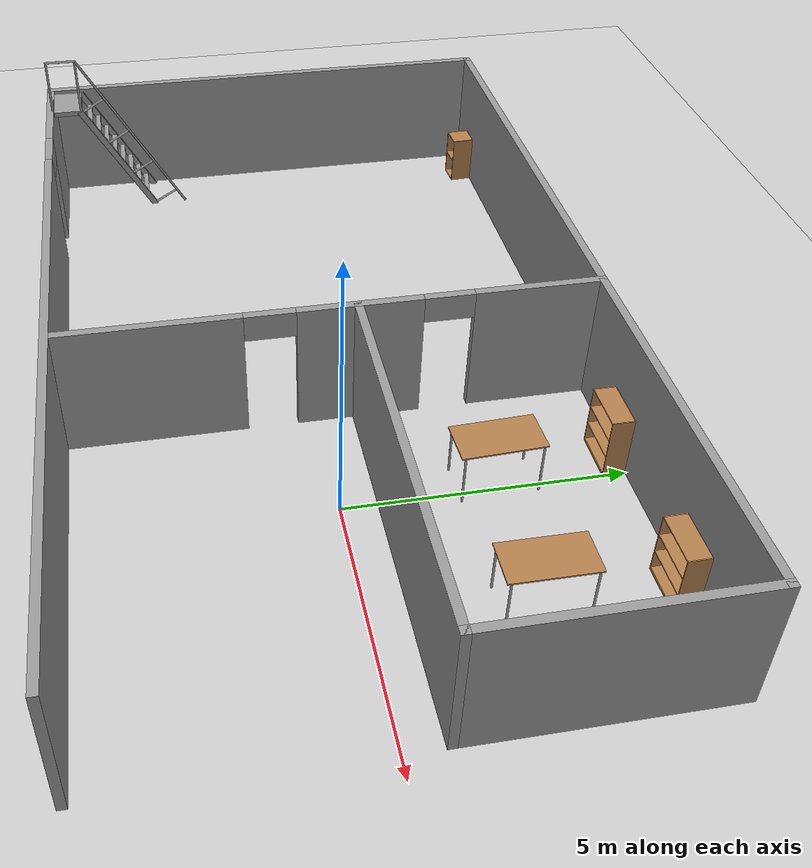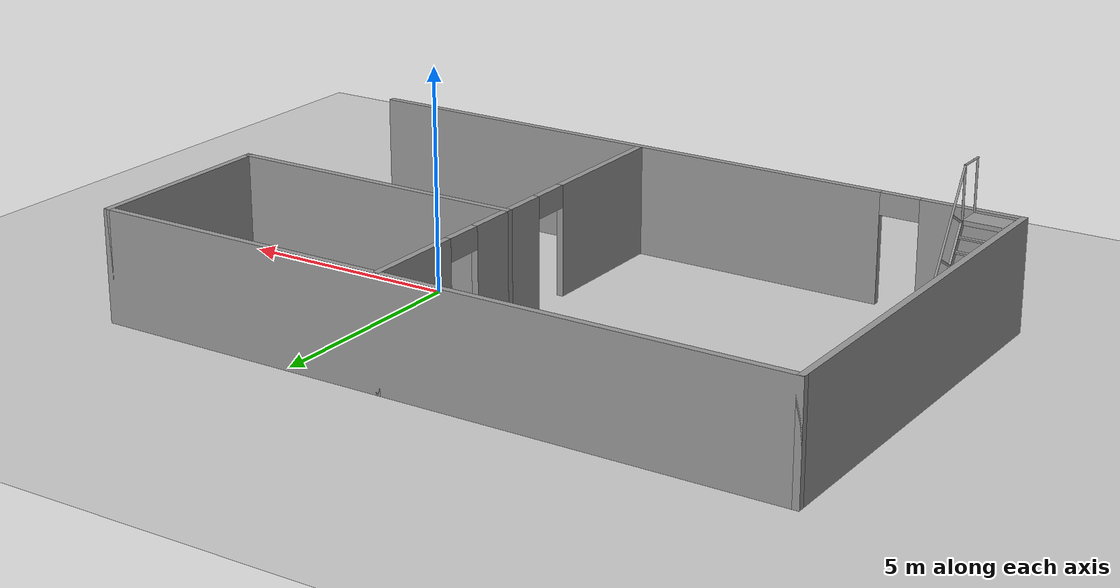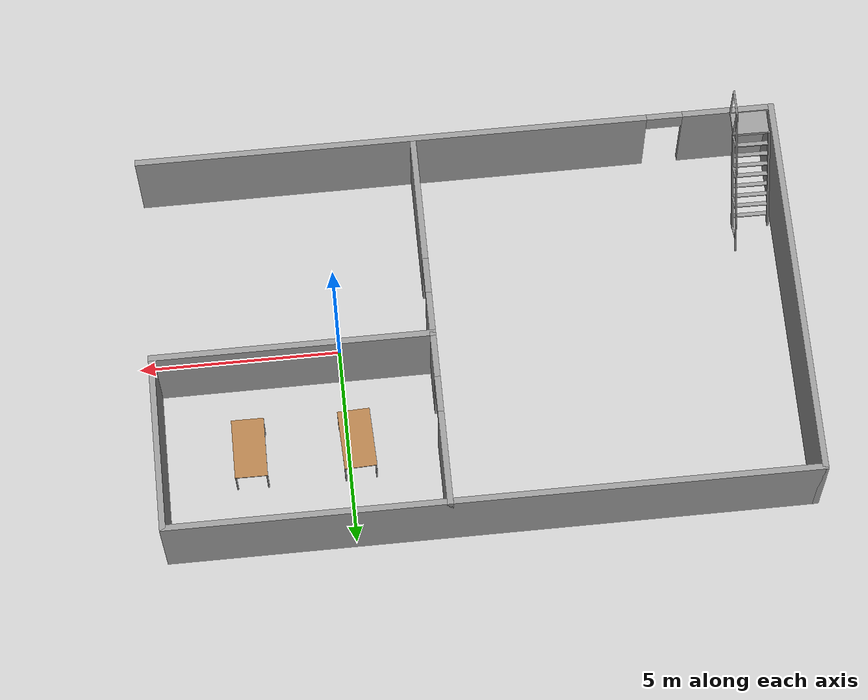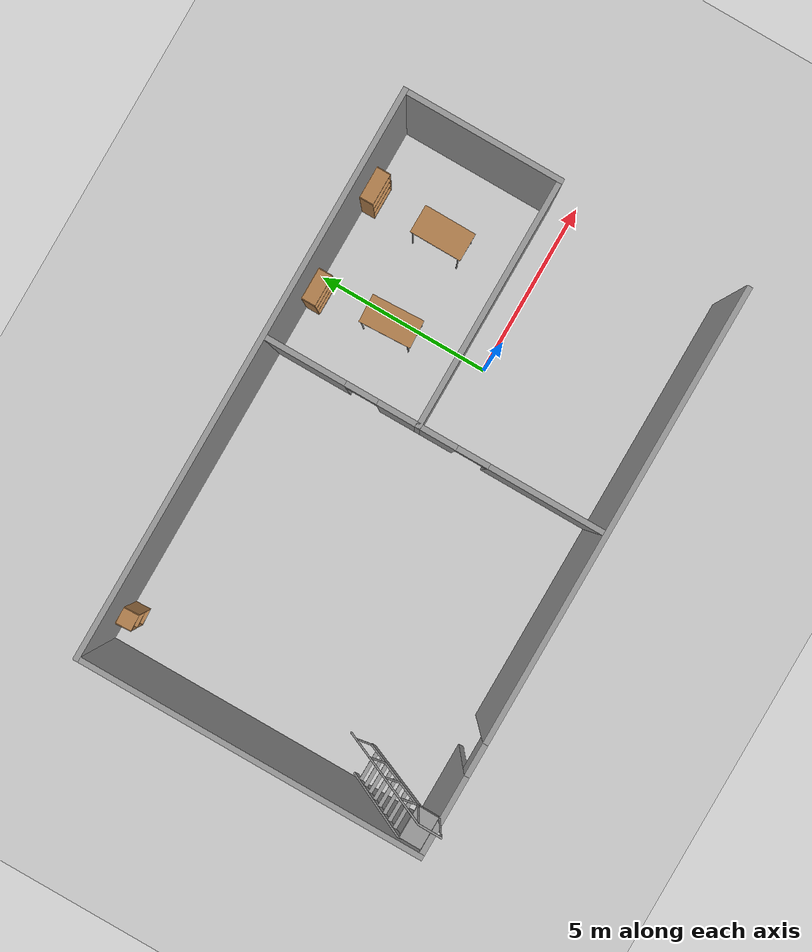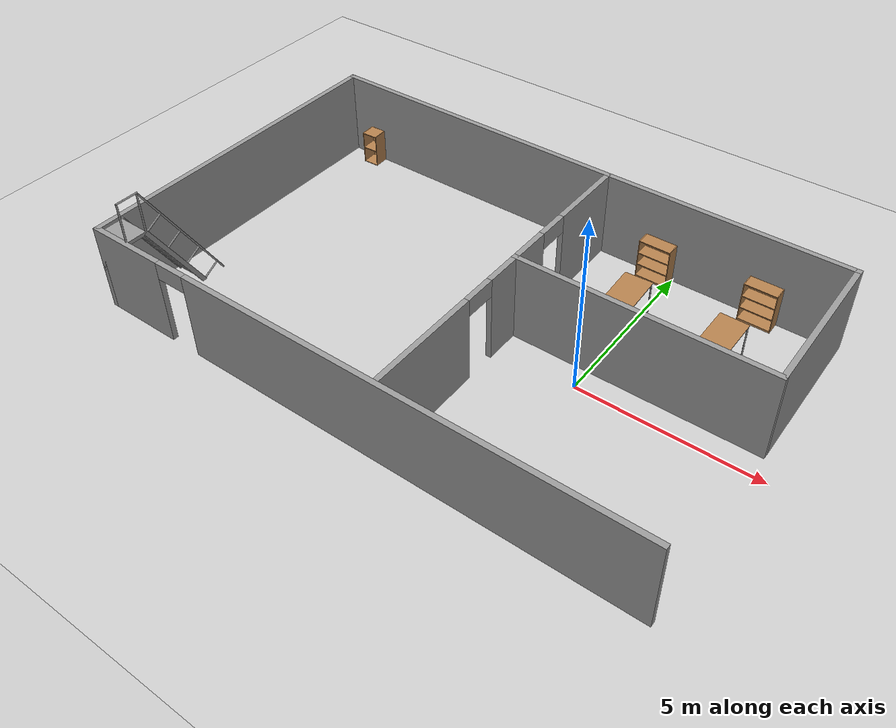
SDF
<sdf version="1.6">
 <world name="default">
  <light name="sun" type="directional">
   <pose>0 0 10 0 -0 0</pose>
   <diffuse>0.8 0.8 0.8 1</diffuse>
   <specular>0.2 0.2 0.2 1</specular>
   <attenuation>
    <range>1000</range>
    <constant>0.9</constant>
    <linear>0.01</linear>
    <quadratic>0.001</quadratic>
   </attenuation>
   <direction>-0.5 0.1 -0.9</direction>
  </light>
  <model name="ground_plane">
   <static>1</static>
   <link name="link">
    <collision name="collision">
     <geometry><plane><normal>0 0 1</normal><size>100 100</size></plane></geometry>
     <surface>
      <contact><collide_bitmask>65535</collide_bitmask></contact>
      <friction><ode><mu>100</mu><mu2>50</mu2></ode></friction>
     </surface>
    </collision>
    <visual name="visual">
     <cast_shadows>0</cast_shadows>
     <geometry><plane><normal>0 0 1</normal><size>100 100</size></plane></geometry>
     <material>
      <script><uri>file://media/materials/scripts/gazebo.material</uri><name>Gazebo/Grey</name></script>
     </material>
    </visual>
   </link>
  </model>
  <gravity>0 0 -9.8</gravity>
  <magnetic_field>6e-06 2.3e-05 -4.2e-05</magnetic_field>
  <atmosphere type="adiabatic"/>
  <physics name="default_physics" default="0" type="ode">
   <max_step_size>0.001</max_step_size>
   <real_time_factor>1</real_time_factor>
   <real_time_update_rate>1000</real_time_update_rate>
  </physics>
  <scene><ambient>0.4 0.4 0.4 1</ambient><background>0.7 0.7 0.7 1</background><shadows>1</shadows></scene>
  <spherical_coordinates>
   <surface_model>EARTH_WGS84</surface_model>
   <latitude_deg>0</latitude_deg>
   <longitude_deg>0</longitude_deg>
   <elevation>0</elevation>
   <heading_deg>0</heading_deg>
  </spherical_coordinates>
  <model name="House2">
   <pose>-3.36785 0.26134 0 0 -0 0</pose>
   <link name="Wall_15">
    <collision name="Wall_15_Collision">
     <geometry><box><size>16 0.15 2.5</size></box></geometry>
     <pose>0 0 1.25 0 -0 0</pose>
    </collision>
    <visual name="Wall_15_Visual">
     <pose>0 0 1.25 0 -0 0</pose>
     <geometry><box><size>16 0.15 2.5</size></box></geometry>
     <material>
      <script><uri>file://media/materials/scripts/gazebo.material</uri><name>Gazebo/Grey</name></script>
      <ambient>1 1 1 1</ambient>
     </material>
     <meta><layer>0</layer></meta>
    </visual>
    <pose>0 4.8 0 0 -0 0</pose>
   </link>
   <link name="Wall_16">
    <collision name="Wall_16_Collision">
     <geometry><box><size>4.5 0.15 2.5</size></box></geometry>
     <pose>0 0 1.25 0 -0 0</pose>
    </collision>
    <visual name="Wall_16_Visual">
     <pose>0 0 1.25 0 -0 0</pose>
     <geometry><box><size>4.5 0.15 2.5</size></box></geometry>
     <material>
      <script><uri>file://media/materials/scripts/gazebo.material</uri><name>Gazebo/Grey</name></script>
      <ambient>1 1 1 1</ambient>
     </material>
     <meta><layer>0</layer></meta>
    </visual>
    <pose>7.925 2.625 0 0 0 -1.5708</pose>
   </link>
   <link name="Wall_19">
    <collision name="Wall_19_Collision">
     <geometry><box><size>7 0.15 2.5</size></box></geometry>
     <pose>0 0 1.25 0 -0 0</pose>
    </collision>
    <visual name="Wall_19_Visual">
     <pose>0 0 1.25 0 -0 0</pose>
     <geometry><box><size>7 0.15 2.5</size></box></geometry>
     <material>
      <script><uri>file://media/materials/scripts/gazebo.material</uri><name>Gazebo/Grey</name></script>
      <ambient>1 1 1 1</ambient>
     </material>
     <meta><layer>0</layer></meta>
    </visual>
    <pose>4.5 0.45 0 0 -0 3.14159</pose>
   </link>
   <link name="Wall_29">
    <collision name="Wall_29_Collision">
     <geometry><box><size>9.75 0.15 2.5</size></box></geometry>
     <pose>0 0 1.25 0 -0 0</pose>
    </collision>
    <visual name="Wall_29_Visual">
     <pose>0 0 1.25 0 -0 0</pose>
     <geometry><box><size>9.75 0.15 2.5</size></box></geometry>
     <material>
      <script><uri>file://media/materials/scripts/gazebo.material</uri><name>Gazebo/Grey</name></script>
      <ambient>1 1 1 1</ambient>
     </material>
     <meta><layer>0</layer></meta>
    </visual>
    <pose>-7.925 0 0 0 0 -1.5708</pose>
   </link>
   <link name="Wall_33">
    <pose>0 -4.8 0 0 -0 0</pose>
    <visual name="Wall_33_Visual_0">
     <pose>-6.84421 0 1.25 0 -0 0</pose>
     <geometry><box><size>2.31159 0.15 2.5</size></box></geometry>
     <material>
      <script><uri>file://media/materials/scripts/gazebo.material</uri><name>Gazebo/Grey</name></script>
      <ambient>1 1 1 1</ambient>
     </material>
     <meta><layer>0</layer></meta>
    </visual>
    <collision name="Wall_33_Collision_0">
     <geometry><box><size>2.31159 0.15 2.5</size></box></geometry>
     <pose>-6.84421 0 1.25 0 -0 0</pose>
    </collision>
    <visual name="Wall_33_Visual_1">
     <pose>1.60579 0 1.25 0 -0 0</pose>
     <geometry><box><size>12.7884 0.15 2.5</size></box></geometry>
     <material>
      <script><uri>file://media/materials/scripts/gazebo.material</uri><name>Gazebo/Grey</name></script>
      <ambient>1 1 1 1</ambient>
     </material>
     <meta><layer>0</layer></meta>
    </visual>
    <collision name="Wall_33_Collision_1">
     <geometry><box><size>12.7884 0.15 2.5</size></box></geometry>
     <pose>1.60579 0 1.25 0 -0 0</pose>
    </collision>
    <visual name="Wall_33_Visual_2">
     <pose>-5.23841 0 2.25 0 -0 0</pose>
     <geometry><box><size>0.9 0.15 0.5</size></box></geometry>
     <material>
      <script><uri>file://media/materials/scripts/gazebo.material</uri><name>Gazebo/Grey</name></script>
      <ambient>1 1 1 1</ambient>
     </material>
     <meta><layer>0</layer></meta>
    </visual>
    <collision name="Wall_33_Collision_2">
     <geometry><box><size>0.9 0.15 0.5</size></box></geometry>
     <pose>-5.23841 0 2.25 0 -0 0</pose>
    </collision>
   </link>
   <link name="Wall_35">
    <pose>1.075 -2.1 0 0 0 -1.5708</pose>
    <visual name="Wall_35_Visual_0">
     <pose>-2.05187 0 1.25 0 -0 0</pose>
     <geometry><box><size>1.14626 0.15 2.5</size></box></geometry>
     <material>
      <script><uri>file://media/materials/scripts/gazebo.material</uri><name>Gazebo/Grey</name></script>
      <ambient>1 1 1 1</ambient>
     </material>
     <meta><layer>0</layer></meta>
    </visual>
    <collision name="Wall_35_Collision_0">
     <geometry><box><size>1.14626 0.15 2.5</size></box></geometry>
     <pose>-2.05187 0 1.25 0 -0 0</pose>
    </collision>
    <visual name="Wall_35_Visual_1">
     <pose>1.02313 0 1.25 0 -0 0</pose>
     <geometry><box><size>3.20374 0.15 2.5</size></box></geometry>
     <material>
      <script><uri>file://media/materials/scripts/gazebo.material</uri><name>Gazebo/Grey</name></script>
      <ambient>1 1 1 1</ambient>
     </material>
     <meta><layer>0</layer></meta>
    </visual>
    <collision name="Wall_35_Collision_1">
     <geometry><box><size>3.20374 0.15 2.5</size></box></geometry>
     <pose>1.02313 0 1.25 0 -0 0</pose>
    </collision>
    <visual name="Wall_35_Visual_2">
     <pose>-1.02874 0 2.25 0 -0 0</pose>
     <geometry><box><size>0.9 0.15 0.5</size></box></geometry>
     <material>
      <script><uri>file://media/materials/scripts/gazebo.material</uri><name>Gazebo/Grey</name></script>
      <ambient>1 1 1 1</ambient>
     </material>
     <meta><layer>0</layer></meta>
    </visual>
    <collision name="Wall_35_Collision_2">
     <geometry><box><size>0.9 0.15 0.5</size></box></geometry>
     <pose>-1.02874 0 2.25 0 -0 0</pose>
    </collision>
   </link>
   <link name="Wall_39">
    <pose>1.075 2.625 0 0 -0 1.5708</pose>
    <visual name="Wall_39_Visual_0">
     <pose>-1.63803 0 1.25 0 -0 0</pose>
     <geometry><box><size>1.22394 0.15 2.5</size></box></geometry>
     <material>
      <script><uri>file://media/materials/scripts/gazebo.material</uri><name>Gazebo/Grey</name></script>
      <ambient>1 1 1 1</ambient>
     </material>
     <meta><layer>0</layer></meta>
    </visual>
    <collision name="Wall_39_Collision_0">
     <geometry><box><size>1.22394 0.15 2.5</size></box></geometry>
     <pose>-1.63803 0 1.25 0 -0 0</pose>
    </collision>
    <visual name="Wall_39_Visual_1">
     <pose>1.06197 0 1.25 0 -0 0</pose>
     <geometry><box><size>2.37606 0.15 2.5</size></box></geometry>
     <material>
      <script><uri>file://media/materials/scripts/gazebo.material</uri><name>Gazebo/Grey</name></script>
      <ambient>1 1 1 1</ambient>
     </material>
     <meta><layer>0</layer></meta>
    </visual>
    <collision name="Wall_39_Collision_1">
     <geometry><box><size>2.37606 0.15 2.5</size></box></geometry>
     <pose>1.06197 0 1.25 0 -0 0</pose>
    </collision>
    <visual name="Wall_39_Visual_2">
     <pose>-0.57606 0 2.25 0 -0 0</pose>
     <geometry><box><size>0.9 0.15 0.5</size></box></geometry>
     <material>
      <script><uri>file://media/materials/scripts/gazebo.material</uri><name>Gazebo/Grey</name></script>
      <ambient>1 1 1 1</ambient>
     </material>
     <meta><layer>0</layer></meta>
    </visual>
    <collision name="Wall_39_Collision_2">
     <geometry><box><size>0.9 0.15 0.5</size></box></geometry>
     <pose>-0.57606 0 2.25 0 -0 0</pose>
    </collision>
   </link>
   <static>1</static>
  </model>
  <model name="bookshelf">
   <static>1</static>
   <link name="link">
    <inertial><mass>1</mass></inertial>
    <collision name="back">
     <pose>0 0.005 0.6 0 -0 0</pose>
     <geometry><box><size>0.9 0.01 1.2</size></box></geometry>
    </collision>
    <visual name="visual1">
     <pose>0 0.005 0.6 0 -0 0</pose>
     <geometry><box><size>0.9 0.01 1.2</size></box></geometry>
     <material>
      <script><uri>file://media/materials/scripts/gazebo.material</uri><name>Gazebo/Wood</name></script>
     </material>
    </visual>
    <collision name="left_side">
     <pose>0.45 -0.195 0.6 0 -0 0</pose>
     <geometry><box><size>0.02 0.4 1.2</size></box></geometry>
    </collision>
    <visual name="visual2">
     <pose>0.45 -0.195 0.6 0 -0 0</pose>
     <geometry><box><size>0.02 0.4 1.2</size></box></geometry>
     <material>
      <script><uri>file://media/materials/scripts/gazebo.material</uri><name>Gazebo/Wood</name></script>
     </material>
    </visual>
    <collision name="right_side">
     <pose>-0.45 -0.195 0.6 0 -0 0</pose>
     <geometry><box><size>0.02 0.4 1.2</size></box></geometry>
    </collision>
    <visual name="visual3">
     <pose>-0.45 -0.195 0.6 0 -0 0</pose>
     <geometry><box><size>0.02 0.4 1.2</size></box></geometry>
     <material>
      <script><uri>file://media/materials/scripts/gazebo.material</uri><name>Gazebo/Wood</name></script>
     </material>
    </visual>
    <collision name="bottom">
     <pose>0 -0.195 0.03 0 -0 0</pose>
     <geometry><box><size>0.88 0.4 0.06</size></box></geometry>
    </collision>
    <visual name="visual4">
     <pose>0 -0.195 0.03 0 -0 0</pose>
     <geometry><box><size>0.88 0.4 0.06</size></box></geometry>
     <material>
      <script><uri>file://media/materials/scripts/gazebo.material</uri><name>Gazebo/Wood</name></script>
     </material>
    </visual>
    <collision name="top">
     <pose>0 -0.195 1.19 0 -0 0</pose>
     <geometry><box><size>0.88 0.4 0.02</size></box></geometry>
    </collision>
    <visual name="visual5">
     <pose>0 -0.195 1.19 0 -0 0</pose>
     <geometry><box><size>0.88 0.4 0.02</size></box></geometry>
     <material>
      <script><uri>file://media/materials/scripts/gazebo.material</uri><name>Gazebo/Wood</name></script>
     </material>
    </visual>
    <collision name="low_shelf">
     <pose>0 -0.195 0.43 0 -0 0</pose>
     <geometry><box><size>0.88 0.4 0.02</size></box></geometry>
    </collision>
    <visual name="visual6">
     <pose>0 -0.195 0.43 0 -0 0</pose>
     <geometry><box><size>0.88 0.4 0.02</size></box></geometry>
     <material>
      <script><uri>file://media/materials/scripts/gazebo.material</uri><name>Gazebo/Wood</name></script>
     </material>
    </visual>
    <collision name="high_shelf">
     <pose>0 -0.195 0.8 0 -0 0</pose>
     <geometry><box><size>0.88 0.4 0.02</size></box></geometry>
    </collision>
    <visual name="visual7">
     <pose>0 -0.195 0.8 0 -0 0</pose>
     <geometry><box><size>0.88 0.4 0.02</size></box></geometry>
     <material>
      <script><uri>file://media/materials/scripts/gazebo.material</uri><name>Gazebo/Wood</name></script>
     </material>
    </visual>
   </link>
   <pose>2.53458 4.98336 0 0 -0 0</pose>
  </model>
  <model name="bookshelf_0">
   <static>1</static>
   <link name="link">
    <inertial><mass>1</mass></inertial>
    <collision name="back">
     <pose>0 0.005 0.6 0 -0 0</pose>
     <geometry><box><size>0.9 0.01 1.2</size></box></geometry>
    </collision>
    <visual name="visual1">
     <pose>0 0.005 0.6 0 -0 0</pose>
     <geometry><box><size>0.9 0.01 1.2</size></box></geometry>
     <material>
      <script><uri>file://media/materials/scripts/gazebo.material</uri><name>Gazebo/Wood</name></script>
     </material>
    </visual>
    <collision name="left_side">
     <pose>0.45 -0.195 0.6 0 -0 0</pose>
     <geometry><box><size>0.02 0.4 1.2</size></box></geometry>
    </collision>
    <visual name="visual2">
     <pose>0.45 -0.195 0.6 0 -0 0</pose>
     <geometry><box><size>0.02 0.4 1.2</size></box></geometry>
     <material>
      <script><uri>file://media/materials/scripts/gazebo.material</uri><name>Gazebo/Wood</name></script>
     </material>
    </visual>
    <collision name="right_side">
     <pose>-0.45 -0.195 0.6 0 -0 0</pose>
     <geometry><box><size>0.02 0.4 1.2</size></box></geometry>
    </collision>
    <visual name="visual3">
     <pose>-0.45 -0.195 0.6 0 -0 0</pose>
     <geometry><box><size>0.02 0.4 1.2</size></box></geometry>
     <material>
      <script><uri>file://media/materials/scripts/gazebo.material</uri><name>Gazebo/Wood</name></script>
     </material>
    </visual>
    <collision name="bottom">
     <pose>0 -0.195 0.03 0 -0 0</pose>
     <geometry><box><size>0.88 0.4 0.06</size></box></geometry>
    </collision>
    <visual name="visual4">
     <pose>0 -0.195 0.03 0 -0 0</pose>
     <geometry><box><size>0.88 0.4 0.06</size></box></geometry>
     <material>
      <script><uri>file://media/materials/scripts/gazebo.material</uri><name>Gazebo/Wood</name></script>
     </material>
    </visual>
    <collision name="top">
     <pose>0 -0.195 1.19 0 -0 0</pose>
     <geometry><box><size>0.88 0.4 0.02</size></box></geometry>
    </collision>
    <visual name="visual5">
     <pose>0 -0.195 1.19 0 -0 0</pose>
     <geometry><box><size>0.88 0.4 0.02</size></box></geometry>
     <material>
      <script><uri>file://media/materials/scripts/gazebo.material</uri><name>Gazebo/Wood</name></script>
     </material>
    </visual>
    <collision name="low_shelf">
     <pose>0 -0.195 0.43 0 -0 0</pose>
     <geometry><box><size>0.88 0.4 0.02</size></box></geometry>
    </collision>
    <visual name="visual6">
     <pose>0 -0.195 0.43 0 -0 0</pose>
     <geometry><box><size>0.88 0.4 0.02</size></box></geometry>
     <material>
      <script><uri>file://media/materials/scripts/gazebo.material</uri><name>Gazebo/Wood</name></script>
     </material>
    </visual>
    <collision name="high_shelf">
     <pose>0 -0.195 0.8 0 -0 0</pose>
     <geometry><box><size>0.88 0.4 0.02</size></box></geometry>
    </collision>
    <visual name="visual7">
     <pose>0 -0.195 0.8 0 -0 0</pose>
     <geometry><box><size>0.88 0.4 0.02</size></box></geometry>
     <material>
      <script><uri>file://media/materials/scripts/gazebo.material</uri><name>Gazebo/Wood</name></script>
     </material>
    </visual>
   </link>
   <pose>-0.458904 4.97247 0 0 -0 0</pose>
  </model>
  <model name="cabinet">
   <static>1</static>
   <link name="cabinet_bottom_plate">
    <inertial>
     <pose>0 0 -1 0 -0 0</pose>
     <inertia><ixx>2.05</ixx><ixy>0</ixy><ixz>0</ixz><iyy>2.05</iyy><iyz>0</iyz><izz>2.05</izz></inertia>
     <mass>25</mass>
    </inertial>
    <collision name="cabinet_bottom_plate_geom">
     <pose>0 0 0.01 0 -0 0</pose>
     <geometry><box><size>0.45 0.45 0.02</size></box></geometry>
    </collision>
    <visual name="cabinet_bottom_plate_geom_visual">
     <pose>0 0 0.01 0 -0 0</pose>
     <geometry><box><size>0.45 0.45 0.02</size></box></geometry>
     <material>
      <script><uri>file://media/materials/scripts/gazebo.material</uri><name>Gazebo/Wood</name></script>
     </material>
    </visual>
    <collision name="cabinet_bottom_plate_geom_cabinet_back_plate">
     <pose>0.235 0 0.51 0 -0 0</pose>
     <geometry><box><size>0.02 0.45 1.02</size></box></geometry>
    </collision>
    <visual name="cabinet_bottom_plate_geom_cabinet_back_plate_visual">
     <pose>0.235 0 0.51 0 -0 0</pose>
     <geometry><box><size>0.02 0.45 1.02</size></box></geometry>
     <material>
      <script><uri>file://media/materials/scripts/gazebo.material</uri><name>Gazebo/Wood</name></script>
     </material>
    </visual>
    <collision name="cabinet_bottom_plate_geom_cabinet_left_plate">
     <pose>0 0.235 0.51 0 -0 0</pose>
     <geometry><box><size>0.45 0.02 1.02</size></box></geometry>
    </collision>
    <visual name="cabinet_bottom_plate_geom_cabinet_left_plate_visual">
     <pose>0 0.235 0.51 0 -0 0</pose>
     <geometry><box><size>0.45 0.02 1.02</size></box></geometry>
     <material>
      <script><uri>file://media/materials/scripts/gazebo.material</uri><name>Gazebo/Wood</name></script>
     </material>
    </visual>
    <collision name="cabinet_bottom_plate_geom_cabinet_middle_plate">
     <pose>0 0 0.51 0 -0 0</pose>
     <geometry><box><size>0.45 0.45 0.02</size></box></geometry>
    </collision>
    <visual name="cabinet_bottom_plate_geom_cabinet_middle_plate_visual">
     <pose>0 0 0.51 0 -0 0</pose>
     <geometry><box><size>0.45 0.45 0.02</size></box></geometry>
     <material>
      <script><uri>file://media/materials/scripts/gazebo.material</uri><name>Gazebo/Wood</name></script>
     </material>
    </visual>
    <collision name="cabinet_bottom_plate_geom_cabinet_right_plate">
     <pose>0 -0.235 0.51 0 -0 0</pose>
     <geometry><box><size>0.45 0.02 1.02</size></box></geometry>
    </collision>
    <visual name="cabinet_bottom_plate_geom_cabinet_right_plate_visual">
     <pose>0 -0.235 0.51 0 -0 0</pose>
     <geometry><box><size>0.45 0.02 1.02</size></box></geometry>
     <material>
      <script><uri>file://media/materials/scripts/gazebo.material</uri><name>Gazebo/Wood</name></script>
     </material>
    </visual>
    <collision name="cabinet_bottom_plate_geom_cabinet_top_plate">
     <pose>0 0 1.01 0 -0 0</pose>
     <geometry><box><size>0.45 0.45 0.02</size></box></geometry>
    </collision>
    <visual name="cabinet_bottom_plate_geom_cabinet_top_plate_visual">
     <pose>0 0 1.01 0 -0 0</pose>
     <geometry><box><size>0.45 0.45 0.02</size></box></geometry>
     <material>
      <script><uri>file://media/materials/scripts/gazebo.material</uri><name>Gazebo/Wood</name></script>
     </material>
    </visual>
   </link>
   <pose>-10.3163 4.75554 0 0 -0 1.61658</pose>
  </model>
  <model name="table">
   <static>1</static>
   <link name="link">
    <collision name="surface">
     <pose>0 0 1 0 -0 0</pose>
     <geometry><box><size>1.5 0.8 0.03</size></box></geometry>
     <surface><friction><ode><mu>0.6</mu><mu2>0.6</mu2></ode></friction></surface>
    </collision>
    <visual name="visual1">
     <pose>0 0 1 0 -0 0</pose>
     <geometry><box><size>1.5 0.8 0.03</size></box></geometry>
     <material>
      <script><uri>file://media/materials/scripts/gazebo.material</uri><name>Gazebo/Wood</name></script>
     </material>
    </visual>
    <collision name="front_left_leg">
     <pose>0.68 0.38 0.5 0 -0 0</pose>
     <geometry><cylinder><radius>0.02</radius><length>1</length></cylinder></geometry>
    </collision>
    <visual name="front_left_leg">
     <pose>0.68 0.38 0.5 0 -0 0</pose>
     <geometry><cylinder><radius>0.02</radius><length>1</length></cylinder></geometry>
     <material>
      <script><uri>file://media/materials/scripts/gazebo.material</uri><name>Gazebo/Grey</name></script>
     </material>
    </visual>
    <collision name="front_right_leg">
     <pose>0.68 -0.38 0.5 0 -0 0</pose>
     <geometry><cylinder><radius>0.02</radius><length>1</length></cylinder></geometry>
    </collision>
    <visual name="front_right_leg">
     <pose>0.68 -0.38 0.5 0 -0 0</pose>
     <geometry><cylinder><radius>0.02</radius><length>1</length></cylinder></geometry>
     <material>
      <script><uri>file://media/materials/scripts/gazebo.material</uri><name>Gazebo/Grey</name></script>
     </material>
    </visual>
    <collision name="back_right_leg">
     <pose>-0.68 -0.38 0.5 0 -0 0</pose>
     <geometry><cylinder><radius>0.02</radius><length>1</length></cylinder></geometry>
    </collision>
    <visual name="back_right_leg">
     <pose>-0.68 -0.38 0.5 0 -0 0</pose>
     <geometry><cylinder><radius>0.02</radius><length>1</length></cylinder></geometry>
     <material>
      <script><uri>file://media/materials/scripts/gazebo.material</uri><name>Gazebo/Grey</name></script>
     </material>
    </visual>
    <collision name="back_left_leg">
     <pose>-0.68 0.38 0.5 0 -0 0</pose>
     <geometry><cylinder><radius>0.02</radius><length>1</length></cylinder></geometry>
    </collision>
    <visual name="back_left_leg">
     <pose>-0.68 0.38 0.5 0 -0 0</pose>
     <geometry><cylinder><radius>0.02</radius><length>1</length></cylinder></geometry>
     <material>
      <script><uri>file://media/materials/scripts/gazebo.material</uri><name>Gazebo/Grey</name></script>
     </material>
    </visual>
   </link>
   <pose>-0.233045 2.70517 0 0 -0 1.61217</pose>
  </model>
  <model name="table_0">
   <static>1</static>
   <link name="link">
    <collision name="surface">
     <pose>0 0 1 0 -0 0</pose>
     <geometry><box><size>1.5 0.8 0.03</size></box></geometry>
     <surface><friction><ode><mu>0.6</mu><mu2>0.6</mu2></ode></friction></surface>
    </collision>
    <visual name="visual1">
     <pose>0 0 1 0 -0 0</pose>
     <geometry><box><size>1.5 0.8 0.03</size></box></geometry>
     <material>
      <script><uri>file://media/materials/scripts/gazebo.material</uri><name>Gazebo/Wood</name></script>
     </material>
    </visual>
    <collision name="front_left_leg">
     <pose>0.68 0.38 0.5 0 -0 0</pose>
     <geometry><cylinder><radius>0.02</radius><length>1</length></cylinder></geometry>
    </collision>
    <visual name="front_left_leg">
     <pose>0.68 0.38 0.5 0 -0 0</pose>
     <geometry><cylinder><radius>0.02</radius><length>1</length></cylinder></geometry>
     <material>
      <script><uri>file://media/materials/scripts/gazebo.material</uri><name>Gazebo/Grey</name></script>
     </material>
    </visual>
    <collision name="front_right_leg">
     <pose>0.68 -0.38 0.5 0 -0 0</pose>
     <geometry><cylinder><radius>0.02</radius><length>1</length></cylinder></geometry>
    </collision>
    <visual name="front_right_leg">
     <pose>0.68 -0.38 0.5 0 -0 0</pose>
     <geometry><cylinder><radius>0.02</radius><length>1</length></cylinder></geometry>
     <material>
      <script><uri>file://media/materials/scripts/gazebo.material</uri><name>Gazebo/Grey</name></script>
     </material>
    </visual>
    <collision name="back_right_leg">
     <pose>-0.68 -0.38 0.5 0 -0 0</pose>
     <geometry><cylinder><radius>0.02</radius><length>1</length></cylinder></geometry>
    </collision>
    <visual name="back_right_leg">
     <pose>-0.68 -0.38 0.5 0 -0 0</pose>
     <geometry><cylinder><radius>0.02</radius><length>1</length></cylinder></geometry>
     <material>
      <script><uri>file://media/materials/scripts/gazebo.material</uri><name>Gazebo/Grey</name></script>
     </material>
    </visual>
    <collision name="back_left_leg">
     <pose>-0.68 0.38 0.5 0 -0 0</pose>
     <geometry><cylinder><radius>0.02</radius><length>1</length></cylinder></geometry>
    </collision>
    <visual name="back_left_leg">
     <pose>-0.68 0.38 0.5 0 -0 0</pose>
     <geometry><cylinder><radius>0.02</radius><length>1</length></cylinder></geometry>
     <material>
      <script><uri>file://media/materials/scripts/gazebo.material</uri><name>Gazebo/Grey</name></script>
     </material>
    </visual>
   </link>
   <pose>2.40592 2.69568 0 0 -0 1.56502</pose>
  </model>
  <model name="ladder_60deg_1rails">
   <static>1</static>
   <link name="step0">
    <pose>0 0.15396 0.266667 0 -0 0</pose>
    <inertial>
     <mass>9.75482</mass>
     <inertia>
      <ixx>0.00957124</ixx>
      <iyy>0.65963</iyy>
      <izz>0.666842</izz>
      <ixy>0</ixy>
      <ixz>0</ixz>
      <iyz>0</iyz>
     </inertia>
    </inertial>
    <collision name="collision"><geometry><box><size>0.9 0.1016 0.0381</size></box></geometry></collision>
    <visual name="visual">
     <geometry><box><size>0.9 0.1016 0.0381</size></box></geometry>
     <material>
      <script><uri>file://media/materials/scripts/gazebo.material</uri><name>Gazebo/Grey</name></script>
     </material>
    </visual>
   </link>
   <link name="step1">
    <pose>0 0.30792 0.533333 0 -0 0</pose>
    <inertial>
     <mass>9.75482</mass>
     <inertia>
      <ixx>0.00957124</ixx>
      <iyy>0.65963</iyy>
      <izz>0.666842</izz>
      <ixy>0</ixy>
      <ixz>0</ixz>
      <iyz>0</iyz>
     </inertia>
    </inertial>
    <collision name="collision"><geometry><box><size>0.9 0.1016 0.0381</size></box></geometry></collision>
    <visual name="visual">
     <geometry><box><size>0.9 0.1016 0.0381</size></box></geometry>
     <material>
      <script><uri>file://media/materials/scripts/gazebo.material</uri><name>Gazebo/Grey</name></script>
     </material>
    </visual>
   </link>
   <link name="step2">
    <pose>0 0.46188 0.8 0 -0 0</pose>
    <inertial>
     <mass>9.75482</mass>
     <inertia>
      <ixx>0.00957124</ixx>
      <iyy>0.65963</iyy>
      <izz>0.666842</izz>
      <ixy>0</ixy>
      <ixz>0</ixz>
      <iyz>0</iyz>
     </inertia>
    </inertial>
    <collision name="collision"><geometry><box><size>0.9 0.1016 0.0381</size></box></geometry></collision>
    <visual name="visual">
     <geometry><box><size>0.9 0.1016 0.0381</size></box></geometry>
     <material>
      <script><uri>file://media/materials/scripts/gazebo.material</uri><name>Gazebo/Grey</name></script>
     </material>
    </visual>
   </link>
   <link name="step3">
    <pose>0 0.61584 1.06667 0 -0 0</pose>
    <inertial>
     <mass>9.75482</mass>
     <inertia>
      <ixx>0.00957124</ixx>
      <iyy>0.65963</iyy>
      <izz>0.666842</izz>
      <ixy>0</ixy>
      <ixz>0</ixz>
      <iyz>0</iyz>
     </inertia>
    </inertial>
    <collision name="collision"><geometry><box><size>0.9 0.1016 0.0381</size></box></geometry></collision>
    <visual name="visual">
     <geometry><box><size>0.9 0.1016 0.0381</size></box></geometry>
     <material>
      <script><uri>file://media/materials/scripts/gazebo.material</uri><name>Gazebo/Grey</name></script>
     </material>
    </visual>
   </link>
   <link name="step4">
    <pose>0 0.7698 1.33333 0 -0 0</pose>
    <inertial>
     <mass>9.75482</mass>
     <inertia>
      <ixx>0.00957124</ixx>
      <iyy>0.65963</iyy>
      <izz>0.666842</izz>
      <ixy>0</ixy>
      <ixz>0</ixz>
      <iyz>0</iyz>
     </inertia>
    </inertial>
    <collision name="collision"><geometry><box><size>0.9 0.1016 0.0381</size></box></geometry></collision>
    <visual name="visual">
     <geometry><box><size>0.9 0.1016 0.0381</size></box></geometry>
     <material>
      <script><uri>file://media/materials/scripts/gazebo.material</uri><name>Gazebo/Grey</name></script>
     </material>
    </visual>
   </link>
   <link name="step5">
    <pose>0 0.92376 1.6 0 -0 0</pose>
    <inertial>
     <mass>9.75482</mass>
     <inertia>
      <ixx>0.00957124</ixx>
      <iyy>0.65963</iyy>
      <izz>0.666842</izz>
      <ixy>0</ixy>
      <ixz>0</ixz>
      <iyz>0</iyz>
     </inertia>
    </inertial>
    <collision name="collision"><geometry><box><size>0.9 0.1016 0.0381</size></box></geometry></collision>
    <visual name="visual">
     <geometry><box><size>0.9 0.1016 0.0381</size></box></geometry>
     <material>
      <script><uri>file://media/materials/scripts/gazebo.material</uri><name>Gazebo/Grey</name></script>
     </material>
    </visual>
   </link>
   <link name="step6">
    <pose>0 1.07772 1.86667 0 -0 0</pose>
    <inertial>
     <mass>9.75482</mass>
     <inertia>
      <ixx>0.00957124</ixx>
      <iyy>0.65963</iyy>
      <izz>0.666842</izz>
      <ixy>0</ixy>
      <ixz>0</ixz>
      <iyz>0</iyz>
     </inertia>
    </inertial>
    <collision name="collision"><geometry><box><size>0.9 0.1016 0.0381</size></box></geometry></collision>
    <visual name="visual">
     <geometry><box><size>0.9 0.1016 0.0381</size></box></geometry>
     <material>
      <script><uri>file://media/materials/scripts/gazebo.material</uri><name>Gazebo/Grey</name></script>
     </material>
    </visual>
   </link>
   <link name="step7">
    <pose>0 1.23168 2.13333 0 -0 0</pose>
    <inertial>
     <mass>9.75482</mass>
     <inertia>
      <ixx>0.00957124</ixx>
      <iyy>0.65963</iyy>
      <izz>0.666842</izz>
      <ixy>0</ixy>
      <ixz>0</ixz>
      <iyz>0</iyz>
     </inertia>
    </inertial>
    <collision name="collision"><geometry><box><size>0.9 0.1016 0.0381</size></box></geometry></collision>
    <visual name="visual">
     <geometry><box><size>0.9 0.1016 0.0381</size></box></geometry>
     <material>
      <script><uri>file://media/materials/scripts/gazebo.material</uri><name>Gazebo/Grey</name></script>
     </material>
    </visual>
   </link>
   <link name="landing">
    <pose>0 1.68564 2.4 0 -0 0</pose>
    <inertial>
     <mass>57.6072</mass>
     <inertia><ixx>1.73518</ixx><iyy>3.89545</iyy><izz>5.6167</izz><ixy>0</ixy><ixz>0</ixz><iyz>0</iyz></inertia>
    </inertial>
    <collision name="collision"><geometry><box><size>0.9 0.6 0.1016</size></box></geometry></collision>
    <visual name="visual">
     <geometry><box><size>0.9 0.6 0.1016</size></box></geometry>
     <material>
      <script><uri>file://media/materials/scripts/gazebo.material</uri><name>Gazebo/Grey</name></script>
     </material>
    </visual>
   </link>
   <link name="left_side_wall">
    <pose>-0.45 0.69282 1.2 1.0472 -0 0</pose>
    <collision name="collision"><geometry><box><size>0.0508 2.85128 0.13</size></box></geometry></collision>
    <visual name="visual">
     <geometry><box><size>0.0508 2.85128 0.13</size></box></geometry>
     <material>
      <script><uri>file://media/materials/scripts/gazebo.material</uri><name>Gazebo/Grey</name></script>
     </material>
    </visual>
   </link>
   <link name="right_side_wall">
    <pose>0.45 0.69282 1.2 1.0472 -0 0</pose>
    <collision name="collision"><geometry><box><size>0.0508 2.85128 0.13</size></box></geometry></collision>
    <visual name="visual">
     <geometry><box><size>0.0508 2.85128 0.13</size></box></geometry>
     <material>
      <script><uri>file://media/materials/scripts/gazebo.material</uri><name>Gazebo/Grey</name></script>
     </material>
    </visual>
   </link>
   <link name="left_railing_long">
    <pose>-0.45 0.34282 1.80622 -0.523599 0 0</pose>
    <collision name="collision">
     <geometry><cylinder><radius>0.02413</radius><length>4.17128</length></cylinder></geometry>
    </collision>
    <visual name="visual">
     <geometry><cylinder><radius>0.02413</radius><length>4.17128</length></cylinder></geometry>
     <material>
      <script><uri>file://media/materials/scripts/gazebo.material</uri><name>Gazebo/Grey</name></script>
     </material>
    </visual>
   </link>
   <link name="left_railing_upright0">
    <pose>-0.45 -0.274963 0.15875 1.0472 -0 0</pose>
    <collision name="collision">
     <geometry><cylinder><radius>0.02413</radius><length>0.541218</length></cylinder></geometry>
    </collision>
    <visual name="visual">
     <geometry><cylinder><radius>0.02413</radius><length>0.541218</length></cylinder></geometry>
     <material>
      <script><uri>file://media/materials/scripts/gazebo.material</uri><name>Gazebo/Grey</name></script>
     </material>
    </visual>
   </link>
   <link name="left_railing_upright1">
    <pose>-0.45 0.186917 0.95875 1.0472 -0 0</pose>
    <collision name="collision">
     <geometry><cylinder><radius>0.02413</radius><length>0.541218</length></cylinder></geometry>
    </collision>
    <visual name="visual">
     <geometry><cylinder><radius>0.02413</radius><length>0.541218</length></cylinder></geometry>
     <material>
      <script><uri>file://media/materials/scripts/gazebo.material</uri><name>Gazebo/Grey</name></script>
     </material>
    </visual>
   </link>
   <link name="left_railing_upright2">
    <pose>-0.45 0.648797 1.75875 1.0472 -0 0</pose>
    <collision name="collision">
     <geometry><cylinder><radius>0.02413</radius><length>0.541218</length></cylinder></geometry>
    </collision>
    <visual name="visual">
     <geometry><cylinder><radius>0.02413</radius><length>0.541218</length></cylinder></geometry>
     <material>
      <script><uri>file://media/materials/scripts/gazebo.material</uri><name>Gazebo/Grey</name></script>
     </material>
    </visual>
   </link>
   <link name="left_railing_upright3">
    <pose>-0.45 1.11068 2.55875 1.0472 -0 0</pose>
    <collision name="collision">
     <geometry><cylinder><radius>0.02413</radius><length>0.541218</length></cylinder></geometry>
    </collision>
    <visual name="visual">
     <geometry><cylinder><radius>0.02413</radius><length>0.541218</length></cylinder></geometry>
     <material>
      <script><uri>file://media/materials/scripts/gazebo.material</uri><name>Gazebo/Grey</name></script>
     </material>
    </visual>
   </link>
   <link name="left_railing_landing_top">
    <pose>-0.45 1.68564 3.61244 1.5708 -0 0</pose>
    <collision name="collision">
     <geometry><cylinder><radius>0.02413</radius><length>0.64826</length></cylinder></geometry>
    </collision>
    <visual name="visual">
     <geometry><cylinder><radius>0.02413</radius><length>0.64826</length></cylinder></geometry>
     <material>
      <script><uri>file://media/materials/scripts/gazebo.material</uri><name>Gazebo/Grey</name></script>
     </material>
    </visual>
   </link>
   <link name="left_railing_landing_upright_0">
    <pose>-0.45 1.38564 3.00622 0 -0 0</pose>
    <collision name="collision">
     <geometry><cylinder><radius>0.02413</radius><length>1.21244</length></cylinder></geometry>
    </collision>
    <visual name="visual">
     <geometry><cylinder><radius>0.02413</radius><length>1.21244</length></cylinder></geometry>
     <material>
      <script><uri>file://media/materials/scripts/gazebo.material</uri><name>Gazebo/Grey</name></script>
     </material>
    </visual>
   </link>
   <link name="left_railing_landing_upright_1">
    <pose>-0.45 1.98564 3.00622 0 -0 0</pose>
    <collision name="collision">
     <geometry><cylinder><radius>0.02413</radius><length>1.21244</length></cylinder></geometry>
    </collision>
    <visual name="visual">
     <geometry><cylinder><radius>0.02413</radius><length>1.21244</length></cylinder></geometry>
     <material>
      <script><uri>file://media/materials/scripts/gazebo.material</uri><name>Gazebo/Grey</name></script>
     </material>
    </visual>
   </link>
   <pose>-10.6966 -2.48786 0 0 -0 3.13279</pose>
  </model>
 </world>
</sdf>
